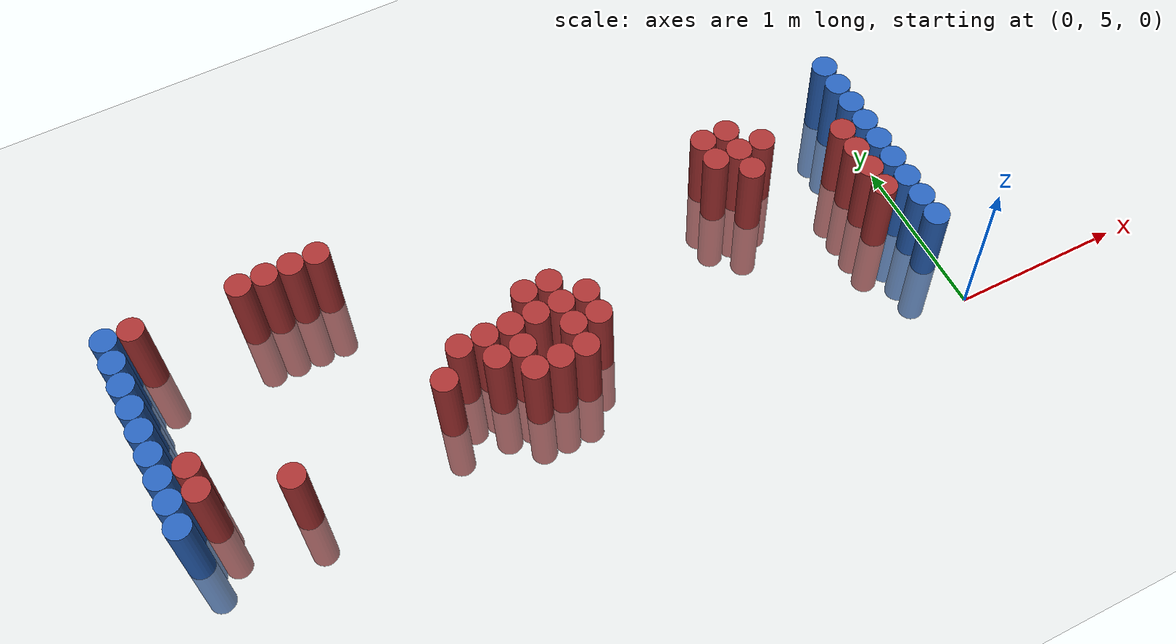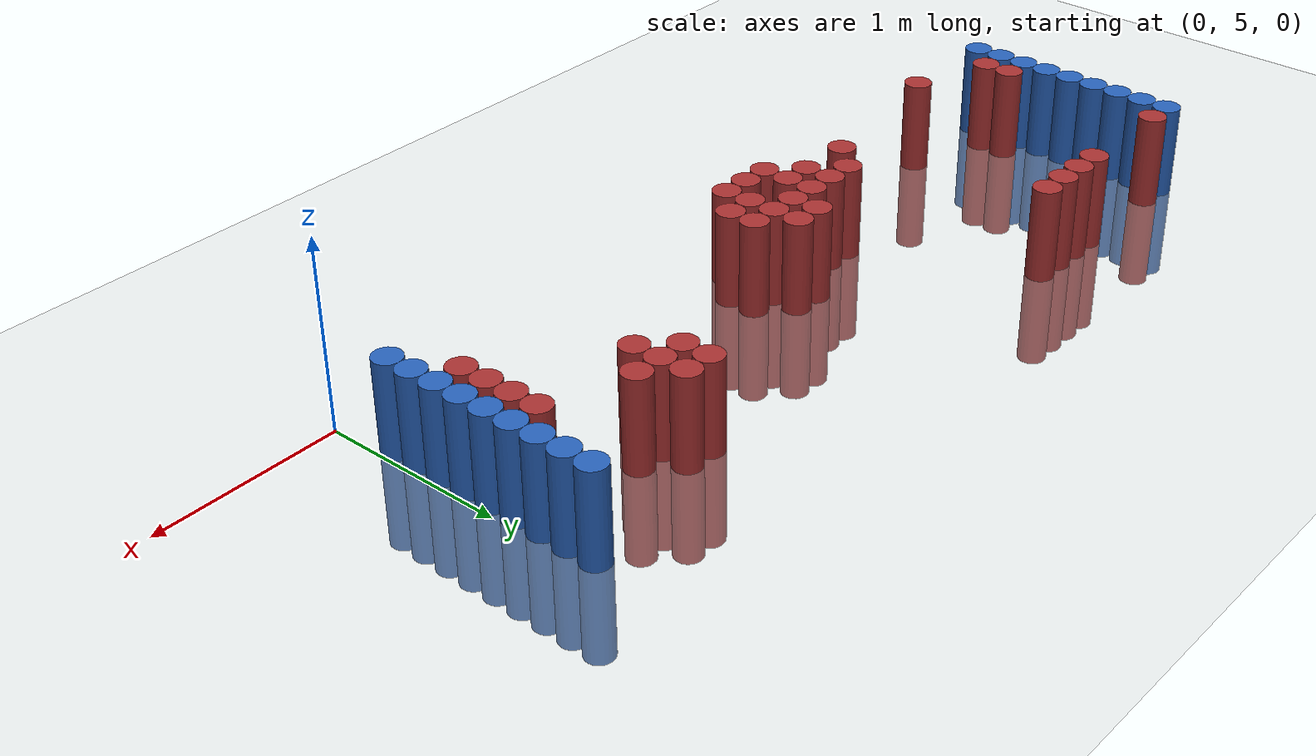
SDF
<sdf version="1.6">
 <world name="default">
  <model name="ground_plane">
   <static>1</static>
   <link name="link">
    <collision name="collision">
     <geometry><plane><normal>0 0 1</normal><size>100 100</size></plane></geometry>
     <surface><friction><ode><mu>100</mu><mu2>50</mu2></ode></friction></surface>
    </collision>
    <visual name="visual">
     <cast_shadows>0</cast_shadows>
     <geometry><plane><normal>0 0 1</normal><size>100 100</size></plane></geometry>
     <material>
      <script><uri>file://media/materials/scripts/gazebo.material</uri><name>Gazebo/Grey</name></script>
     </material>
    </visual>
   </link>
  </model>
  <model name="unit_cylinder_98">
   <static>1</static>
   <pose>-4.425000 5.475000 0.000000 0.000000 0.000000 0.000000</pose>
   <link name="link">
    <inertial>
     <mass>1</mass>
     <inertia><ixx>0.145833</ixx><ixy>0</ixy><ixz>0</ixz><iyy>0.145833</iyy><iyz>0</iyz><izz>0.125</izz></inertia>
    </inertial>
    <collision name="collision">
     <geometry><cylinder><radius>0.075000</radius><length>1</length></cylinder></geometry>
    </collision>
    <visual name="visual">
     <geometry><cylinder><radius>0.075000</radius><length>1</length></cylinder></geometry>
     <material>
      <ambient>0.152000 0.379000 0.720000 1</ambient>
      <diffuse>0.152000 0.379000 0.720000 1</diffuse>
     </material>
     <material>
      <script><name>Gazebo/Grey</name><uri>file://media/materials/scripts/gazebo.material</uri></script>
     </material>
    </visual>
   </link>
  </model>
  <model name="unit_cylinder_99">
   <static>1</static>
   <pose>-4.425000 5.625000 0.000000 0.000000 0.000000 0.000000</pose>
   <link name="link">
    <inertial>
     <mass>1</mass>
     <inertia><ixx>0.145833</ixx><ixy>0</ixy><ixz>0</ixz><iyy>0.145833</iyy><iyz>0</iyz><izz>0.125</izz></inertia>
    </inertial>
    <collision name="collision">
     <geometry><cylinder><radius>0.075000</radius><length>1</length></cylinder></geometry>
    </collision>
    <visual name="visual">
     <geometry><cylinder><radius>0.075000</radius><length>1</length></cylinder></geometry>
     <material>
      <ambient>0.152000 0.379000 0.720000 1</ambient>
      <diffuse>0.152000 0.379000 0.720000 1</diffuse>
     </material>
     <material>
      <script><name>Gazebo/Grey</name><uri>file://media/materials/scripts/gazebo.material</uri></script>
     </material>
    </visual>
   </link>
  </model>
  <model name="unit_cylinder_100">
   <static>1</static>
   <pose>-4.425000 5.775000 0.000000 0.000000 0.000000 0.000000</pose>
   <link name="link">
    <inertial>
     <mass>1</mass>
     <inertia><ixx>0.145833</ixx><ixy>0</ixy><ixz>0</ixz><iyy>0.145833</iyy><iyz>0</iyz><izz>0.125</izz></inertia>
    </inertial>
    <collision name="collision">
     <geometry><cylinder><radius>0.075000</radius><length>1</length></cylinder></geometry>
    </collision>
    <visual name="visual">
     <geometry><cylinder><radius>0.075000</radius><length>1</length></cylinder></geometry>
     <material>
      <ambient>0.152000 0.379000 0.720000 1</ambient>
      <diffuse>0.152000 0.379000 0.720000 1</diffuse>
     </material>
     <material>
      <script><name>Gazebo/Grey</name><uri>file://media/materials/scripts/gazebo.material</uri></script>
     </material>
    </visual>
   </link>
  </model>
  <model name="unit_cylinder_101">
   <static>1</static>
   <pose>-4.425000 5.925000 0.000000 0.000000 0.000000 0.000000</pose>
   <link name="link">
    <inertial>
     <mass>1</mass>
     <inertia><ixx>0.145833</ixx><ixy>0</ixy><ixz>0</ixz><iyy>0.145833</iyy><iyz>0</iyz><izz>0.125</izz></inertia>
    </inertial>
    <collision name="collision">
     <geometry><cylinder><radius>0.075000</radius><length>1</length></cylinder></geometry>
    </collision>
    <visual name="visual">
     <geometry><cylinder><radius>0.075000</radius><length>1</length></cylinder></geometry>
     <material>
      <ambient>0.152000 0.379000 0.720000 1</ambient>
      <diffuse>0.152000 0.379000 0.720000 1</diffuse>
     </material>
     <material>
      <script><name>Gazebo/Grey</name><uri>file://media/materials/scripts/gazebo.material</uri></script>
     </material>
    </visual>
   </link>
  </model>
  <model name="unit_cylinder_102">
   <static>1</static>
   <pose>-4.425000 6.075000 0.000000 0.000000 0.000000 0.000000</pose>
   <link name="link">
    <inertial>
     <mass>1</mass>
     <inertia><ixx>0.145833</ixx><ixy>0</ixy><ixz>0</ixz><iyy>0.145833</iyy><iyz>0</iyz><izz>0.125</izz></inertia>
    </inertial>
    <collision name="collision">
     <geometry><cylinder><radius>0.075000</radius><length>1</length></cylinder></geometry>
    </collision>
    <visual name="visual">
     <geometry><cylinder><radius>0.075000</radius><length>1</length></cylinder></geometry>
     <material>
      <ambient>0.152000 0.379000 0.720000 1</ambient>
      <diffuse>0.152000 0.379000 0.720000 1</diffuse>
     </material>
     <material>
      <script><name>Gazebo/Grey</name><uri>file://media/materials/scripts/gazebo.material</uri></script>
     </material>
    </visual>
   </link>
  </model>
  <model name="unit_cylinder_103">
   <static>1</static>
   <pose>-4.425000 6.225000 0.000000 0.000000 0.000000 0.000000</pose>
   <link name="link">
    <inertial>
     <mass>1</mass>
     <inertia><ixx>0.145833</ixx><ixy>0</ixy><ixz>0</ixz><iyy>0.145833</iyy><iyz>0</iyz><izz>0.125</izz></inertia>
    </inertial>
    <collision name="collision">
     <geometry><cylinder><radius>0.075000</radius><length>1</length></cylinder></geometry>
    </collision>
    <visual name="visual">
     <geometry><cylinder><radius>0.075000</radius><length>1</length></cylinder></geometry>
     <material>
      <ambient>0.152000 0.379000 0.720000 1</ambient>
      <diffuse>0.152000 0.379000 0.720000 1</diffuse>
     </material>
     <material>
      <script><name>Gazebo/Grey</name><uri>file://media/materials/scripts/gazebo.material</uri></script>
     </material>
    </visual>
   </link>
  </model>
  <model name="unit_cylinder_104">
   <static>1</static>
   <pose>-4.425000 6.375000 0.000000 0.000000 0.000000 0.000000</pose>
   <link name="link">
    <inertial>
     <mass>1</mass>
     <inertia><ixx>0.145833</ixx><ixy>0</ixy><ixz>0</ixz><iyy>0.145833</iyy><iyz>0</iyz><izz>0.125</izz></inertia>
    </inertial>
    <collision name="collision">
     <geometry><cylinder><radius>0.075000</radius><length>1</length></cylinder></geometry>
    </collision>
    <visual name="visual">
     <geometry><cylinder><radius>0.075000</radius><length>1</length></cylinder></geometry>
     <material>
      <ambient>0.152000 0.379000 0.720000 1</ambient>
      <diffuse>0.152000 0.379000 0.720000 1</diffuse>
     </material>
     <material>
      <script><name>Gazebo/Grey</name><uri>file://media/materials/scripts/gazebo.material</uri></script>
     </material>
    </visual>
   </link>
  </model>
  <model name="unit_cylinder_105">
   <static>1</static>
   <pose>-4.425000 6.525000 0.000000 0.000000 0.000000 0.000000</pose>
   <link name="link">
    <inertial>
     <mass>1</mass>
     <inertia><ixx>0.145833</ixx><ixy>0</ixy><ixz>0</ixz><iyy>0.145833</iyy><iyz>0</iyz><izz>0.125</izz></inertia>
    </inertial>
    <collision name="collision">
     <geometry><cylinder><radius>0.075000</radius><length>1</length></cylinder></geometry>
    </collision>
    <visual name="visual">
     <geometry><cylinder><radius>0.075000</radius><length>1</length></cylinder></geometry>
     <material>
      <ambient>0.152000 0.379000 0.720000 1</ambient>
      <diffuse>0.152000 0.379000 0.720000 1</diffuse>
     </material>
     <material>
      <script><name>Gazebo/Grey</name><uri>file://media/materials/scripts/gazebo.material</uri></script>
     </material>
    </visual>
   </link>
  </model>
  <model name="unit_cylinder_106">
   <static>1</static>
   <pose>-4.425000 6.675000 0.000000 0.000000 0.000000 0.000000</pose>
   <link name="link">
    <inertial>
     <mass>1</mass>
     <inertia><ixx>0.145833</ixx><ixy>0</ixy><ixz>0</ixz><iyy>0.145833</iyy><iyz>0</iyz><izz>0.125</izz></inertia>
    </inertial>
    <collision name="collision">
     <geometry><cylinder><radius>0.075000</radius><length>1</length></cylinder></geometry>
    </collision>
    <visual name="visual">
     <geometry><cylinder><radius>0.075000</radius><length>1</length></cylinder></geometry>
     <material>
      <ambient>0.152000 0.379000 0.720000 1</ambient>
      <diffuse>0.152000 0.379000 0.720000 1</diffuse>
     </material>
     <material>
      <script><name>Gazebo/Grey</name><uri>file://media/materials/scripts/gazebo.material</uri></script>
     </material>
    </visual>
   </link>
  </model>
  <model name="unit_cylinder_126">
   <static>1</static>
   <pose>-4.275000 5.625000 0.000000 0.000000 0.000000 0.000000</pose>
   <link name="link">
    <inertial>
     <mass>1</mass>
     <inertia><ixx>0.145833</ixx><ixy>0</ixy><ixz>0</ixz><iyy>0.145833</iyy><iyz>0</iyz><izz>0.125</izz></inertia>
    </inertial>
    <collision name="collision">
     <geometry><cylinder><radius>0.075000</radius><length>1</length></cylinder></geometry>
    </collision>
    <visual name="visual">
     <geometry><cylinder><radius>0.075000</radius><length>1</length></cylinder></geometry>
     <material>
      <ambient>0.648000 0.192000 0.192000 1</ambient>
      <diffuse>0.648000 0.192000 0.192000 1</diffuse>
     </material>
     <material>
      <script><name>Gazebo/Grey</name><uri>file://media/materials/scripts/gazebo.material</uri></script>
     </material>
    </visual>
   </link>
  </model>
  <model name="unit_cylinder_127">
   <static>1</static>
   <pose>-4.275000 5.775000 0.000000 0.000000 0.000000 0.000000</pose>
   <link name="link">
    <inertial>
     <mass>1</mass>
     <inertia><ixx>0.145833</ixx><ixy>0</ixy><ixz>0</ixz><iyy>0.145833</iyy><iyz>0</iyz><izz>0.125</izz></inertia>
    </inertial>
    <collision name="collision">
     <geometry><cylinder><radius>0.075000</radius><length>1</length></cylinder></geometry>
    </collision>
    <visual name="visual">
     <geometry><cylinder><radius>0.075000</radius><length>1</length></cylinder></geometry>
     <material>
      <ambient>0.648000 0.192000 0.192000 1</ambient>
      <diffuse>0.648000 0.192000 0.192000 1</diffuse>
     </material>
     <material>
      <script><name>Gazebo/Grey</name><uri>file://media/materials/scripts/gazebo.material</uri></script>
     </material>
    </visual>
   </link>
  </model>
  <model name="unit_cylinder_128">
   <static>1</static>
   <pose>-4.275000 6.675000 0.000000 0.000000 0.000000 0.000000</pose>
   <link name="link">
    <inertial>
     <mass>1</mass>
     <inertia><ixx>0.145833</ixx><ixy>0</ixy><ixz>0</ixz><iyy>0.145833</iyy><iyz>0</iyz><izz>0.125</izz></inertia>
    </inertial>
    <collision name="collision">
     <geometry><cylinder><radius>0.075000</radius><length>1</length></cylinder></geometry>
    </collision>
    <visual name="visual">
     <geometry><cylinder><radius>0.075000</radius><length>1</length></cylinder></geometry>
     <material>
      <ambient>0.648000 0.192000 0.192000 1</ambient>
      <diffuse>0.648000 0.192000 0.192000 1</diffuse>
     </material>
     <material>
      <script><name>Gazebo/Grey</name><uri>file://media/materials/scripts/gazebo.material</uri></script>
     </material>
    </visual>
   </link>
  </model>
  <model name="unit_cylinder_158">
   <static>1</static>
   <pose>-3.825000 5.475000 0.000000 0.000000 0.000000 0.000000</pose>
   <link name="link">
    <inertial>
     <mass>1</mass>
     <inertia><ixx>0.145833</ixx><ixy>0</ixy><ixz>0</ixz><iyy>0.145833</iyy><iyz>0</iyz><izz>0.125</izz></inertia>
    </inertial>
    <collision name="collision">
     <geometry><cylinder><radius>0.075000</radius><length>1</length></cylinder></geometry>
    </collision>
    <visual name="visual">
     <geometry><cylinder><radius>0.075000</radius><length>1</length></cylinder></geometry>
     <material>
      <ambient>0.648000 0.192000 0.192000 1</ambient>
      <diffuse>0.648000 0.192000 0.192000 1</diffuse>
     </material>
     <material>
      <script><name>Gazebo/Grey</name><uri>file://media/materials/scripts/gazebo.material</uri></script>
     </material>
    </visual>
   </link>
  </model>
  <model name="unit_cylinder_164">
   <static>1</static>
   <pose>-3.675000 6.675000 0.000000 0.000000 0.000000 0.000000</pose>
   <link name="link">
    <inertial>
     <mass>1</mass>
     <inertia><ixx>0.145833</ixx><ixy>0</ixy><ixz>0</ixz><iyy>0.145833</iyy><iyz>0</iyz><izz>0.125</izz></inertia>
    </inertial>
    <collision name="collision">
     <geometry><cylinder><radius>0.075000</radius><length>1</length></cylinder></geometry>
    </collision>
    <visual name="visual">
     <geometry><cylinder><radius>0.075000</radius><length>1</length></cylinder></geometry>
     <material>
      <ambient>0.648000 0.192000 0.192000 1</ambient>
      <diffuse>0.648000 0.192000 0.192000 1</diffuse>
     </material>
     <material>
      <script><name>Gazebo/Grey</name><uri>file://media/materials/scripts/gazebo.material</uri></script>
     </material>
    </visual>
   </link>
  </model>
  <model name="unit_cylinder_167">
   <static>1</static>
   <pose>-3.525000 6.675000 0.000000 0.000000 0.000000 0.000000</pose>
   <link name="link">
    <inertial>
     <mass>1</mass>
     <inertia><ixx>0.145833</ixx><ixy>0</ixy><ixz>0</ixz><iyy>0.145833</iyy><iyz>0</iyz><izz>0.125</izz></inertia>
    </inertial>
    <collision name="collision">
     <geometry><cylinder><radius>0.075000</radius><length>1</length></cylinder></geometry>
    </collision>
    <visual name="visual">
     <geometry><cylinder><radius>0.075000</radius><length>1</length></cylinder></geometry>
     <material>
      <ambient>0.648000 0.192000 0.192000 1</ambient>
      <diffuse>0.648000 0.192000 0.192000 1</diffuse>
     </material>
     <material>
      <script><name>Gazebo/Grey</name><uri>file://media/materials/scripts/gazebo.material</uri></script>
     </material>
    </visual>
   </link>
  </model>
  <model name="unit_cylinder_173">
   <static>1</static>
   <pose>-3.375000 6.675000 0.000000 0.000000 0.000000 0.000000</pose>
   <link name="link">
    <inertial>
     <mass>1</mass>
     <inertia><ixx>0.145833</ixx><ixy>0</ixy><ixz>0</ixz><iyy>0.145833</iyy><iyz>0</iyz><izz>0.125</izz></inertia>
    </inertial>
    <collision name="collision">
     <geometry><cylinder><radius>0.075000</radius><length>1</length></cylinder></geometry>
    </collision>
    <visual name="visual">
     <geometry><cylinder><radius>0.075000</radius><length>1</length></cylinder></geometry>
     <material>
      <ambient>0.648000 0.192000 0.192000 1</ambient>
      <diffuse>0.648000 0.192000 0.192000 1</diffuse>
     </material>
     <material>
      <script><name>Gazebo/Grey</name><uri>file://media/materials/scripts/gazebo.material</uri></script>
     </material>
    </visual>
   </link>
  </model>
  <model name="unit_cylinder_181">
   <static>1</static>
   <pose>-3.225000 6.675000 0.000000 0.000000 0.000000 0.000000</pose>
   <link name="link">
    <inertial>
     <mass>1</mass>
     <inertia><ixx>0.145833</ixx><ixy>0</ixy><ixz>0</ixz><iyy>0.145833</iyy><iyz>0</iyz><izz>0.125</izz></inertia>
    </inertial>
    <collision name="collision">
     <geometry><cylinder><radius>0.075000</radius><length>1</length></cylinder></geometry>
    </collision>
    <visual name="visual">
     <geometry><cylinder><radius>0.075000</radius><length>1</length></cylinder></geometry>
     <material>
      <ambient>0.648000 0.192000 0.192000 1</ambient>
      <diffuse>0.648000 0.192000 0.192000 1</diffuse>
     </material>
     <material>
      <script><name>Gazebo/Grey</name><uri>file://media/materials/scripts/gazebo.material</uri></script>
     </material>
    </visual>
   </link>
  </model>
  <model name="unit_cylinder_193">
   <static>1</static>
   <pose>-2.925000 5.625000 0.000000 0.000000 0.000000 0.000000</pose>
   <link name="link">
    <inertial>
     <mass>1</mass>
     <inertia><ixx>0.145833</ixx><ixy>0</ixy><ixz>0</ixz><iyy>0.145833</iyy><iyz>0</iyz><izz>0.125</izz></inertia>
    </inertial>
    <collision name="collision">
     <geometry><cylinder><radius>0.075000</radius><length>1</length></cylinder></geometry>
    </collision>
    <visual name="visual">
     <geometry><cylinder><radius>0.075000</radius><length>1</length></cylinder></geometry>
     <material>
      <ambient>0.648000 0.192000 0.192000 1</ambient>
      <diffuse>0.648000 0.192000 0.192000 1</diffuse>
     </material>
     <material>
      <script><name>Gazebo/Grey</name><uri>file://media/materials/scripts/gazebo.material</uri></script>
     </material>
    </visual>
   </link>
  </model>
  <model name="unit_cylinder_200">
   <static>1</static>
   <pose>-2.775000 5.775000 0.000000 0.000000 0.000000 0.000000</pose>
   <link name="link">
    <inertial>
     <mass>1</mass>
     <inertia><ixx>0.145833</ixx><ixy>0</ixy><ixz>0</ixz><iyy>0.145833</iyy><iyz>0</iyz><izz>0.125</izz></inertia>
    </inertial>
    <collision name="collision">
     <geometry><cylinder><radius>0.075000</radius><length>1</length></cylinder></geometry>
    </collision>
    <visual name="visual">
     <geometry><cylinder><radius>0.075000</radius><length>1</length></cylinder></geometry>
     <material>
      <ambient>0.648000 0.192000 0.192000 1</ambient>
      <diffuse>0.648000 0.192000 0.192000 1</diffuse>
     </material>
     <material>
      <script><name>Gazebo/Grey</name><uri>file://media/materials/scripts/gazebo.material</uri></script>
     </material>
    </visual>
   </link>
  </model>
  <model name="unit_cylinder_208">
   <static>1</static>
   <pose>-2.625000 5.625000 0.000000 0.000000 0.000000 0.000000</pose>
   <link name="link">
    <inertial>
     <mass>1</mass>
     <inertia><ixx>0.145833</ixx><ixy>0</ixy><ixz>0</ixz><iyy>0.145833</iyy><iyz>0</iyz><izz>0.125</izz></inertia>
    </inertial>
    <collision name="collision">
     <geometry><cylinder><radius>0.075000</radius><length>1</length></cylinder></geometry>
    </collision>
    <visual name="visual">
     <geometry><cylinder><radius>0.075000</radius><length>1</length></cylinder></geometry>
     <material>
      <ambient>0.648000 0.192000 0.192000 1</ambient>
      <diffuse>0.648000 0.192000 0.192000 1</diffuse>
     </material>
     <material>
      <script><name>Gazebo/Grey</name><uri>file://media/materials/scripts/gazebo.material</uri></script>
     </material>
    </visual>
   </link>
  </model>
  <model name="unit_cylinder_209">
   <static>1</static>
   <pose>-2.625000 5.775000 0.000000 0.000000 0.000000 0.000000</pose>
   <link name="link">
    <inertial>
     <mass>1</mass>
     <inertia><ixx>0.145833</ixx><ixy>0</ixy><ixz>0</ixz><iyy>0.145833</iyy><iyz>0</iyz><izz>0.125</izz></inertia>
    </inertial>
    <collision name="collision">
     <geometry><cylinder><radius>0.075000</radius><length>1</length></cylinder></geometry>
    </collision>
    <visual name="visual">
     <geometry><cylinder><radius>0.075000</radius><length>1</length></cylinder></geometry>
     <material>
      <ambient>0.648000 0.192000 0.192000 1</ambient>
      <diffuse>0.648000 0.192000 0.192000 1</diffuse>
     </material>
     <material>
      <script><name>Gazebo/Grey</name><uri>file://media/materials/scripts/gazebo.material</uri></script>
     </material>
    </visual>
   </link>
  </model>
  <model name="unit_cylinder_218">
   <static>1</static>
   <pose>-2.475000 5.475000 0.000000 0.000000 0.000000 0.000000</pose>
   <link name="link">
    <inertial>
     <mass>1</mass>
     <inertia><ixx>0.145833</ixx><ixy>0</ixy><ixz>0</ixz><iyy>0.145833</iyy><iyz>0</iyz><izz>0.125</izz></inertia>
    </inertial>
    <collision name="collision">
     <geometry><cylinder><radius>0.075000</radius><length>1</length></cylinder></geometry>
    </collision>
    <visual name="visual">
     <geometry><cylinder><radius>0.075000</radius><length>1</length></cylinder></geometry>
     <material>
      <ambient>0.648000 0.192000 0.192000 1</ambient>
      <diffuse>0.648000 0.192000 0.192000 1</diffuse>
     </material>
     <material>
      <script><name>Gazebo/Grey</name><uri>file://media/materials/scripts/gazebo.material</uri></script>
     </material>
    </visual>
   </link>
  </model>
  <model name="unit_cylinder_219">
   <static>1</static>
   <pose>-2.475000 5.625000 0.000000 0.000000 0.000000 0.000000</pose>
   <link name="link">
    <inertial>
     <mass>1</mass>
     <inertia><ixx>0.145833</ixx><ixy>0</ixy><ixz>0</ixz><iyy>0.145833</iyy><iyz>0</iyz><izz>0.125</izz></inertia>
    </inertial>
    <collision name="collision">
     <geometry><cylinder><radius>0.075000</radius><length>1</length></cylinder></geometry>
    </collision>
    <visual name="visual">
     <geometry><cylinder><radius>0.075000</radius><length>1</length></cylinder></geometry>
     <material>
      <ambient>0.648000 0.192000 0.192000 1</ambient>
      <diffuse>0.648000 0.192000 0.192000 1</diffuse>
     </material>
     <material>
      <script><name>Gazebo/Grey</name><uri>file://media/materials/scripts/gazebo.material</uri></script>
     </material>
    </visual>
   </link>
  </model>
  <model name="unit_cylinder_220">
   <static>1</static>
   <pose>-2.475000 5.775000 0.000000 0.000000 0.000000 0.000000</pose>
   <link name="link">
    <inertial>
     <mass>1</mass>
     <inertia><ixx>0.145833</ixx><ixy>0</ixy><ixz>0</ixz><iyy>0.145833</iyy><iyz>0</iyz><izz>0.125</izz></inertia>
    </inertial>
    <collision name="collision">
     <geometry><cylinder><radius>0.075000</radius><length>1</length></cylinder></geometry>
    </collision>
    <visual name="visual">
     <geometry><cylinder><radius>0.075000</radius><length>1</length></cylinder></geometry>
     <material>
      <ambient>0.648000 0.192000 0.192000 1</ambient>
      <diffuse>0.648000 0.192000 0.192000 1</diffuse>
     </material>
     <material>
      <script><name>Gazebo/Grey</name><uri>file://media/materials/scripts/gazebo.material</uri></script>
     </material>
    </visual>
   </link>
  </model>
  <model name="unit_cylinder_226">
   <static>1</static>
   <pose>-2.325000 5.475000 0.000000 0.000000 0.000000 0.000000</pose>
   <link name="link">
    <inertial>
     <mass>1</mass>
     <inertia><ixx>0.145833</ixx><ixy>0</ixy><ixz>0</ixz><iyy>0.145833</iyy><iyz>0</iyz><izz>0.125</izz></inertia>
    </inertial>
    <collision name="collision">
     <geometry><cylinder><radius>0.075000</radius><length>1</length></cylinder></geometry>
    </collision>
    <visual name="visual">
     <geometry><cylinder><radius>0.075000</radius><length>1</length></cylinder></geometry>
     <material>
      <ambient>0.648000 0.192000 0.192000 1</ambient>
      <diffuse>0.648000 0.192000 0.192000 1</diffuse>
     </material>
     <material>
      <script><name>Gazebo/Grey</name><uri>file://media/materials/scripts/gazebo.material</uri></script>
     </material>
    </visual>
   </link>
  </model>
  <model name="unit_cylinder_227">
   <static>1</static>
   <pose>-2.325000 5.775000 0.000000 0.000000 0.000000 0.000000</pose>
   <link name="link">
    <inertial>
     <mass>1</mass>
     <inertia><ixx>0.145833</ixx><ixy>0</ixy><ixz>0</ixz><iyy>0.145833</iyy><iyz>0</iyz><izz>0.125</izz></inertia>
    </inertial>
    <collision name="collision">
     <geometry><cylinder><radius>0.075000</radius><length>1</length></cylinder></geometry>
    </collision>
    <visual name="visual">
     <geometry><cylinder><radius>0.075000</radius><length>1</length></cylinder></geometry>
     <material>
      <ambient>0.648000 0.192000 0.192000 1</ambient>
      <diffuse>0.648000 0.192000 0.192000 1</diffuse>
     </material>
     <material>
      <script><name>Gazebo/Grey</name><uri>file://media/materials/scripts/gazebo.material</uri></script>
     </material>
    </visual>
   </link>
  </model>
  <model name="unit_cylinder_228">
   <static>1</static>
   <pose>-2.325000 5.925000 0.000000 0.000000 0.000000 0.000000</pose>
   <link name="link">
    <inertial>
     <mass>1</mass>
     <inertia><ixx>0.145833</ixx><ixy>0</ixy><ixz>0</ixz><iyy>0.145833</iyy><iyz>0</iyz><izz>0.125</izz></inertia>
    </inertial>
    <collision name="collision">
     <geometry><cylinder><radius>0.075000</radius><length>1</length></cylinder></geometry>
    </collision>
    <visual name="visual">
     <geometry><cylinder><radius>0.075000</radius><length>1</length></cylinder></geometry>
     <material>
      <ambient>0.648000 0.192000 0.192000 1</ambient>
      <diffuse>0.648000 0.192000 0.192000 1</diffuse>
     </material>
     <material>
      <script><name>Gazebo/Grey</name><uri>file://media/materials/scripts/gazebo.material</uri></script>
     </material>
    </visual>
   </link>
  </model>
  <model name="unit_cylinder_232">
   <static>1</static>
   <pose>-2.175000 5.475000 0.000000 0.000000 0.000000 0.000000</pose>
   <link name="link">
    <inertial>
     <mass>1</mass>
     <inertia><ixx>0.145833</ixx><ixy>0</ixy><ixz>0</ixz><iyy>0.145833</iyy><iyz>0</iyz><izz>0.125</izz></inertia>
    </inertial>
    <collision name="collision">
     <geometry><cylinder><radius>0.075000</radius><length>1</length></cylinder></geometry>
    </collision>
    <visual name="visual">
     <geometry><cylinder><radius>0.075000</radius><length>1</length></cylinder></geometry>
     <material>
      <ambient>0.648000 0.192000 0.192000 1</ambient>
      <diffuse>0.648000 0.192000 0.192000 1</diffuse>
     </material>
     <material>
      <script><name>Gazebo/Grey</name><uri>file://media/materials/scripts/gazebo.material</uri></script>
     </material>
    </visual>
   </link>
  </model>
  <model name="unit_cylinder_233">
   <static>1</static>
   <pose>-2.175000 5.625000 0.000000 0.000000 0.000000 0.000000</pose>
   <link name="link">
    <inertial>
     <mass>1</mass>
     <inertia><ixx>0.145833</ixx><ixy>0</ixy><ixz>0</ixz><iyy>0.145833</iyy><iyz>0</iyz><izz>0.125</izz></inertia>
    </inertial>
    <collision name="collision">
     <geometry><cylinder><radius>0.075000</radius><length>1</length></cylinder></geometry>
    </collision>
    <visual name="visual">
     <geometry><cylinder><radius>0.075000</radius><length>1</length></cylinder></geometry>
     <material>
      <ambient>0.648000 0.192000 0.192000 1</ambient>
      <diffuse>0.648000 0.192000 0.192000 1</diffuse>
     </material>
     <material>
      <script><name>Gazebo/Grey</name><uri>file://media/materials/scripts/gazebo.material</uri></script>
     </material>
    </visual>
   </link>
  </model>
  <model name="unit_cylinder_234">
   <static>1</static>
   <pose>-2.175000 5.775000 0.000000 0.000000 0.000000 0.000000</pose>
   <link name="link">
    <inertial>
     <mass>1</mass>
     <inertia><ixx>0.145833</ixx><ixy>0</ixy><ixz>0</ixz><iyy>0.145833</iyy><iyz>0</iyz><izz>0.125</izz></inertia>
    </inertial>
    <collision name="collision">
     <geometry><cylinder><radius>0.075000</radius><length>1</length></cylinder></geometry>
    </collision>
    <visual name="visual">
     <geometry><cylinder><radius>0.075000</radius><length>1</length></cylinder></geometry>
     <material>
      <ambient>0.648000 0.192000 0.192000 1</ambient>
      <diffuse>0.648000 0.192000 0.192000 1</diffuse>
     </material>
     <material>
      <script><name>Gazebo/Grey</name><uri>file://media/materials/scripts/gazebo.material</uri></script>
     </material>
    </visual>
   </link>
  </model>
  <model name="unit_cylinder_235">
   <static>1</static>
   <pose>-2.175000 5.925000 0.000000 0.000000 0.000000 0.000000</pose>
   <link name="link">
    <inertial>
     <mass>1</mass>
     <inertia><ixx>0.145833</ixx><ixy>0</ixy><ixz>0</ixz><iyy>0.145833</iyy><iyz>0</iyz><izz>0.125</izz></inertia>
    </inertial>
    <collision name="collision">
     <geometry><cylinder><radius>0.075000</radius><length>1</length></cylinder></geometry>
    </collision>
    <visual name="visual">
     <geometry><cylinder><radius>0.075000</radius><length>1</length></cylinder></geometry>
     <material>
      <ambient>0.648000 0.192000 0.192000 1</ambient>
      <diffuse>0.648000 0.192000 0.192000 1</diffuse>
     </material>
     <material>
      <script><name>Gazebo/Grey</name><uri>file://media/materials/scripts/gazebo.material</uri></script>
     </material>
    </visual>
   </link>
  </model>
  <model name="unit_cylinder_239">
   <static>1</static>
   <pose>-2.025000 5.625000 0.000000 0.000000 0.000000 0.000000</pose>
   <link name="link">
    <inertial>
     <mass>1</mass>
     <inertia><ixx>0.145833</ixx><ixy>0</ixy><ixz>0</ixz><iyy>0.145833</iyy><iyz>0</iyz><izz>0.125</izz></inertia>
    </inertial>
    <collision name="collision">
     <geometry><cylinder><radius>0.075000</radius><length>1</length></cylinder></geometry>
    </collision>
    <visual name="visual">
     <geometry><cylinder><radius>0.075000</radius><length>1</length></cylinder></geometry>
     <material>
      <ambient>0.648000 0.192000 0.192000 1</ambient>
      <diffuse>0.648000 0.192000 0.192000 1</diffuse>
     </material>
     <material>
      <script><name>Gazebo/Grey</name><uri>file://media/materials/scripts/gazebo.material</uri></script>
     </material>
    </visual>
   </link>
  </model>
  <model name="unit_cylinder_240">
   <static>1</static>
   <pose>-2.025000 5.775000 0.000000 0.000000 0.000000 0.000000</pose>
   <link name="link">
    <inertial>
     <mass>1</mass>
     <inertia><ixx>0.145833</ixx><ixy>0</ixy><ixz>0</ixz><iyy>0.145833</iyy><iyz>0</iyz><izz>0.125</izz></inertia>
    </inertial>
    <collision name="collision">
     <geometry><cylinder><radius>0.075000</radius><length>1</length></cylinder></geometry>
    </collision>
    <visual name="visual">
     <geometry><cylinder><radius>0.075000</radius><length>1</length></cylinder></geometry>
     <material>
      <ambient>0.648000 0.192000 0.192000 1</ambient>
      <diffuse>0.648000 0.192000 0.192000 1</diffuse>
     </material>
     <material>
      <script><name>Gazebo/Grey</name><uri>file://media/materials/scripts/gazebo.material</uri></script>
     </material>
    </visual>
   </link>
  </model>
  <model name="unit_cylinder_262">
   <static>1</static>
   <pose>-0.975000 6.225000 0.000000 0.000000 0.000000 0.000000</pose>
   <link name="link">
    <inertial>
     <mass>1</mass>
     <inertia><ixx>0.145833</ixx><ixy>0</ixy><ixz>0</ixz><iyy>0.145833</iyy><iyz>0</iyz><izz>0.125</izz></inertia>
    </inertial>
    <collision name="collision">
     <geometry><cylinder><radius>0.075000</radius><length>1</length></cylinder></geometry>
    </collision>
    <visual name="visual">
     <geometry><cylinder><radius>0.075000</radius><length>1</length></cylinder></geometry>
     <material>
      <ambient>0.648000 0.192000 0.192000 1</ambient>
      <diffuse>0.648000 0.192000 0.192000 1</diffuse>
     </material>
     <material>
      <script><name>Gazebo/Grey</name><uri>file://media/materials/scripts/gazebo.material</uri></script>
     </material>
    </visual>
   </link>
  </model>
  <model name="unit_cylinder_263">
   <static>1</static>
   <pose>-0.975000 6.375000 0.000000 0.000000 0.000000 0.000000</pose>
   <link name="link">
    <inertial>
     <mass>1</mass>
     <inertia><ixx>0.145833</ixx><ixy>0</ixy><ixz>0</ixz><iyy>0.145833</iyy><iyz>0</iyz><izz>0.125</izz></inertia>
    </inertial>
    <collision name="collision">
     <geometry><cylinder><radius>0.075000</radius><length>1</length></cylinder></geometry>
    </collision>
    <visual name="visual">
     <geometry><cylinder><radius>0.075000</radius><length>1</length></cylinder></geometry>
     <material>
      <ambient>0.648000 0.192000 0.192000 1</ambient>
      <diffuse>0.648000 0.192000 0.192000 1</diffuse>
     </material>
     <material>
      <script><name>Gazebo/Grey</name><uri>file://media/materials/scripts/gazebo.material</uri></script>
     </material>
    </visual>
   </link>
  </model>
  <model name="unit_cylinder_264">
   <static>1</static>
   <pose>-0.825000 6.075000 0.000000 0.000000 0.000000 0.000000</pose>
   <link name="link">
    <inertial>
     <mass>1</mass>
     <inertia><ixx>0.145833</ixx><ixy>0</ixy><ixz>0</ixz><iyy>0.145833</iyy><iyz>0</iyz><izz>0.125</izz></inertia>
    </inertial>
    <collision name="collision">
     <geometry><cylinder><radius>0.075000</radius><length>1</length></cylinder></geometry>
    </collision>
    <visual name="visual">
     <geometry><cylinder><radius>0.075000</radius><length>1</length></cylinder></geometry>
     <material>
      <ambient>0.648000 0.192000 0.192000 1</ambient>
      <diffuse>0.648000 0.192000 0.192000 1</diffuse>
     </material>
     <material>
      <script><name>Gazebo/Grey</name><uri>file://media/materials/scripts/gazebo.material</uri></script>
     </material>
    </visual>
   </link>
  </model>
  <model name="unit_cylinder_265">
   <static>1</static>
   <pose>-0.825000 6.225000 0.000000 0.000000 0.000000 0.000000</pose>
   <link name="link">
    <inertial>
     <mass>1</mass>
     <inertia><ixx>0.145833</ixx><ixy>0</ixy><ixz>0</ixz><iyy>0.145833</iyy><iyz>0</iyz><izz>0.125</izz></inertia>
    </inertial>
    <collision name="collision">
     <geometry><cylinder><radius>0.075000</radius><length>1</length></cylinder></geometry>
    </collision>
    <visual name="visual">
     <geometry><cylinder><radius>0.075000</radius><length>1</length></cylinder></geometry>
     <material>
      <ambient>0.648000 0.192000 0.192000 1</ambient>
      <diffuse>0.648000 0.192000 0.192000 1</diffuse>
     </material>
     <material>
      <script><name>Gazebo/Grey</name><uri>file://media/materials/scripts/gazebo.material</uri></script>
     </material>
    </visual>
   </link>
  </model>
  <model name="unit_cylinder_266">
   <static>1</static>
   <pose>-0.825000 6.375000 0.000000 0.000000 0.000000 0.000000</pose>
   <link name="link">
    <inertial>
     <mass>1</mass>
     <inertia><ixx>0.145833</ixx><ixy>0</ixy><ixz>0</ixz><iyy>0.145833</iyy><iyz>0</iyz><izz>0.125</izz></inertia>
    </inertial>
    <collision name="collision">
     <geometry><cylinder><radius>0.075000</radius><length>1</length></cylinder></geometry>
    </collision>
    <visual name="visual">
     <geometry><cylinder><radius>0.075000</radius><length>1</length></cylinder></geometry>
     <material>
      <ambient>0.648000 0.192000 0.192000 1</ambient>
      <diffuse>0.648000 0.192000 0.192000 1</diffuse>
     </material>
     <material>
      <script><name>Gazebo/Grey</name><uri>file://media/materials/scripts/gazebo.material</uri></script>
     </material>
    </visual>
   </link>
  </model>
  <model name="unit_cylinder_267">
   <static>1</static>
   <pose>-0.675000 6.225000 0.000000 0.000000 0.000000 0.000000</pose>
   <link name="link">
    <inertial>
     <mass>1</mass>
     <inertia><ixx>0.145833</ixx><ixy>0</ixy><ixz>0</ixz><iyy>0.145833</iyy><iyz>0</iyz><izz>0.125</izz></inertia>
    </inertial>
    <collision name="collision">
     <geometry><cylinder><radius>0.075000</radius><length>1</length></cylinder></geometry>
    </collision>
    <visual name="visual">
     <geometry><cylinder><radius>0.075000</radius><length>1</length></cylinder></geometry>
     <material>
      <ambient>0.648000 0.192000 0.192000 1</ambient>
      <diffuse>0.648000 0.192000 0.192000 1</diffuse>
     </material>
     <material>
      <script><name>Gazebo/Grey</name><uri>file://media/materials/scripts/gazebo.material</uri></script>
     </material>
    </visual>
   </link>
  </model>
  <model name="unit_cylinder_268">
   <static>1</static>
   <pose>-0.225000 5.625000 0.000000 0.000000 0.000000 0.000000</pose>
   <link name="link">
    <inertial>
     <mass>1</mass>
     <inertia><ixx>0.145833</ixx><ixy>0</ixy><ixz>0</ixz><iyy>0.145833</iyy><iyz>0</iyz><izz>0.125</izz></inertia>
    </inertial>
    <collision name="collision">
     <geometry><cylinder><radius>0.075000</radius><length>1</length></cylinder></geometry>
    </collision>
    <visual name="visual">
     <geometry><cylinder><radius>0.075000</radius><length>1</length></cylinder></geometry>
     <material>
      <ambient>0.648000 0.192000 0.192000 1</ambient>
      <diffuse>0.648000 0.192000 0.192000 1</diffuse>
     </material>
     <material>
      <script><name>Gazebo/Grey</name><uri>file://media/materials/scripts/gazebo.material</uri></script>
     </material>
    </visual>
   </link>
  </model>
  <model name="unit_cylinder_269">
   <static>1</static>
   <pose>-0.225000 5.775000 0.000000 0.000000 0.000000 0.000000</pose>
   <link name="link">
    <inertial>
     <mass>1</mass>
     <inertia><ixx>0.145833</ixx><ixy>0</ixy><ixz>0</ixz><iyy>0.145833</iyy><iyz>0</iyz><izz>0.125</izz></inertia>
    </inertial>
    <collision name="collision">
     <geometry><cylinder><radius>0.075000</radius><length>1</length></cylinder></geometry>
    </collision>
    <visual name="visual">
     <geometry><cylinder><radius>0.075000</radius><length>1</length></cylinder></geometry>
     <material>
      <ambient>0.648000 0.192000 0.192000 1</ambient>
      <diffuse>0.648000 0.192000 0.192000 1</diffuse>
     </material>
     <material>
      <script><name>Gazebo/Grey</name><uri>file://media/materials/scripts/gazebo.material</uri></script>
     </material>
    </visual>
   </link>
  </model>
  <model name="unit_cylinder_270">
   <static>1</static>
   <pose>-0.225000 5.925000 0.000000 0.000000 0.000000 0.000000</pose>
   <link name="link">
    <inertial>
     <mass>1</mass>
     <inertia><ixx>0.145833</ixx><ixy>0</ixy><ixz>0</ixz><iyy>0.145833</iyy><iyz>0</iyz><izz>0.125</izz></inertia>
    </inertial>
    <collision name="collision">
     <geometry><cylinder><radius>0.075000</radius><length>1</length></cylinder></geometry>
    </collision>
    <visual name="visual">
     <geometry><cylinder><radius>0.075000</radius><length>1</length></cylinder></geometry>
     <material>
      <ambient>0.648000 0.192000 0.192000 1</ambient>
      <diffuse>0.648000 0.192000 0.192000 1</diffuse>
     </material>
     <material>
      <script><name>Gazebo/Grey</name><uri>file://media/materials/scripts/gazebo.material</uri></script>
     </material>
    </visual>
   </link>
  </model>
  <model name="unit_cylinder_271">
   <static>1</static>
   <pose>-0.225000 6.075000 0.000000 0.000000 0.000000 0.000000</pose>
   <link name="link">
    <inertial>
     <mass>1</mass>
     <inertia><ixx>0.145833</ixx><ixy>0</ixy><ixz>0</ixz><iyy>0.145833</iyy><iyz>0</iyz><izz>0.125</izz></inertia>
    </inertial>
    <collision name="collision">
     <geometry><cylinder><radius>0.075000</radius><length>1</length></cylinder></geometry>
    </collision>
    <visual name="visual">
     <geometry><cylinder><radius>0.075000</radius><length>1</length></cylinder></geometry>
     <material>
      <ambient>0.648000 0.192000 0.192000 1</ambient>
      <diffuse>0.648000 0.192000 0.192000 1</diffuse>
     </material>
     <material>
      <script><name>Gazebo/Grey</name><uri>file://media/materials/scripts/gazebo.material</uri></script>
     </material>
    </visual>
   </link>
  </model>
  <model name="unit_cylinder_284">
   <static>1</static>
   <pose>-0.075000 5.325000 0.000000 0.000000 0.000000 0.000000</pose>
   <link name="link">
    <inertial>
     <mass>1</mass>
     <inertia><ixx>0.145833</ixx><ixy>0</ixy><ixz>0</ixz><iyy>0.145833</iyy><iyz>0</iyz><izz>0.125</izz></inertia>
    </inertial>
    <collision name="collision">
     <geometry><cylinder><radius>0.075000</radius><length>1</length></cylinder></geometry>
    </collision>
    <visual name="visual">
     <geometry><cylinder><radius>0.075000</radius><length>1</length></cylinder></geometry>
     <material>
      <ambient>0.152000 0.379000 0.720000 1</ambient>
      <diffuse>0.152000 0.379000 0.720000 1</diffuse>
     </material>
     <material>
      <script><name>Gazebo/Grey</name><uri>file://media/materials/scripts/gazebo.material</uri></script>
     </material>
    </visual>
   </link>
  </model>
  <model name="unit_cylinder_285">
   <static>1</static>
   <pose>-0.075000 5.475000 0.000000 0.000000 0.000000 0.000000</pose>
   <link name="link">
    <inertial>
     <mass>1</mass>
     <inertia><ixx>0.145833</ixx><ixy>0</ixy><ixz>0</ixz><iyy>0.145833</iyy><iyz>0</iyz><izz>0.125</izz></inertia>
    </inertial>
    <collision name="collision">
     <geometry><cylinder><radius>0.075000</radius><length>1</length></cylinder></geometry>
    </collision>
    <visual name="visual">
     <geometry><cylinder><radius>0.075000</radius><length>1</length></cylinder></geometry>
     <material>
      <ambient>0.152000 0.379000 0.720000 1</ambient>
      <diffuse>0.152000 0.379000 0.720000 1</diffuse>
     </material>
     <material>
      <script><name>Gazebo/Grey</name><uri>file://media/materials/scripts/gazebo.material</uri></script>
     </material>
    </visual>
   </link>
  </model>
  <model name="unit_cylinder_286">
   <static>1</static>
   <pose>-0.075000 5.625000 0.000000 0.000000 0.000000 0.000000</pose>
   <link name="link">
    <inertial>
     <mass>1</mass>
     <inertia><ixx>0.145833</ixx><ixy>0</ixy><ixz>0</ixz><iyy>0.145833</iyy><iyz>0</iyz><izz>0.125</izz></inertia>
    </inertial>
    <collision name="collision">
     <geometry><cylinder><radius>0.075000</radius><length>1</length></cylinder></geometry>
    </collision>
    <visual name="visual">
     <geometry><cylinder><radius>0.075000</radius><length>1</length></cylinder></geometry>
     <material>
      <ambient>0.152000 0.379000 0.720000 1</ambient>
      <diffuse>0.152000 0.379000 0.720000 1</diffuse>
     </material>
     <material>
      <script><name>Gazebo/Grey</name><uri>file://media/materials/scripts/gazebo.material</uri></script>
     </material>
    </visual>
   </link>
  </model>
  <model name="unit_cylinder_287">
   <static>1</static>
   <pose>-0.075000 5.775000 0.000000 0.000000 0.000000 0.000000</pose>
   <link name="link">
    <inertial>
     <mass>1</mass>
     <inertia><ixx>0.145833</ixx><ixy>0</ixy><ixz>0</ixz><iyy>0.145833</iyy><iyz>0</iyz><izz>0.125</izz></inertia>
    </inertial>
    <collision name="collision">
     <geometry><cylinder><radius>0.075000</radius><length>1</length></cylinder></geometry>
    </collision>
    <visual name="visual">
     <geometry><cylinder><radius>0.075000</radius><length>1</length></cylinder></geometry>
     <material>
      <ambient>0.152000 0.379000 0.720000 1</ambient>
      <diffuse>0.152000 0.379000 0.720000 1</diffuse>
     </material>
     <material>
      <script><name>Gazebo/Grey</name><uri>file://media/materials/scripts/gazebo.material</uri></script>
     </material>
    </visual>
   </link>
  </model>
  <model name="unit_cylinder_288">
   <static>1</static>
   <pose>-0.075000 5.925000 0.000000 0.000000 0.000000 0.000000</pose>
   <link name="link">
    <inertial>
     <mass>1</mass>
     <inertia><ixx>0.145833</ixx><ixy>0</ixy><ixz>0</ixz><iyy>0.145833</iyy><iyz>0</iyz><izz>0.125</izz></inertia>
    </inertial>
    <collision name="collision">
     <geometry><cylinder><radius>0.075000</radius><length>1</length></cylinder></geometry>
    </collision>
    <visual name="visual">
     <geometry><cylinder><radius>0.075000</radius><length>1</length></cylinder></geometry>
     <material>
      <ambient>0.152000 0.379000 0.720000 1</ambient>
      <diffuse>0.152000 0.379000 0.720000 1</diffuse>
     </material>
     <material>
      <script><name>Gazebo/Grey</name><uri>file://media/materials/scripts/gazebo.material</uri></script>
     </material>
    </visual>
   </link>
  </model>
  <model name="unit_cylinder_289">
   <static>1</static>
   <pose>-0.075000 6.075000 0.000000 0.000000 0.000000 0.000000</pose>
   <link name="link">
    <inertial>
     <mass>1</mass>
     <inertia><ixx>0.145833</ixx><ixy>0</ixy><ixz>0</ixz><iyy>0.145833</iyy><iyz>0</iyz><izz>0.125</izz></inertia>
    </inertial>
    <collision name="collision">
     <geometry><cylinder><radius>0.075000</radius><length>1</length></cylinder></geometry>
    </collision>
    <visual name="visual">
     <geometry><cylinder><radius>0.075000</radius><length>1</length></cylinder></geometry>
     <material>
      <ambient>0.152000 0.379000 0.720000 1</ambient>
      <diffuse>0.152000 0.379000 0.720000 1</diffuse>
     </material>
     <material>
      <script><name>Gazebo/Grey</name><uri>file://media/materials/scripts/gazebo.material</uri></script>
     </material>
    </visual>
   </link>
  </model>
  <model name="unit_cylinder_290">
   <static>1</static>
   <pose>-0.075000 6.225000 0.000000 0.000000 0.000000 0.000000</pose>
   <link name="link">
    <inertial>
     <mass>1</mass>
     <inertia><ixx>0.145833</ixx><ixy>0</ixy><ixz>0</ixz><iyy>0.145833</iyy><iyz>0</iyz><izz>0.125</izz></inertia>
    </inertial>
    <collision name="collision">
     <geometry><cylinder><radius>0.075000</radius><length>1</length></cylinder></geometry>
    </collision>
    <visual name="visual">
     <geometry><cylinder><radius>0.075000</radius><length>1</length></cylinder></geometry>
     <material>
      <ambient>0.152000 0.379000 0.720000 1</ambient>
      <diffuse>0.152000 0.379000 0.720000 1</diffuse>
     </material>
     <material>
      <script><name>Gazebo/Grey</name><uri>file://media/materials/scripts/gazebo.material</uri></script>
     </material>
    </visual>
   </link>
  </model>
  <model name="unit_cylinder_291">
   <static>1</static>
   <pose>-0.075000 6.375000 0.000000 0.000000 0.000000 0.000000</pose>
   <link name="link">
    <inertial>
     <mass>1</mass>
     <inertia><ixx>0.145833</ixx><ixy>0</ixy><ixz>0</ixz><iyy>0.145833</iyy><iyz>0</iyz><izz>0.125</izz></inertia>
    </inertial>
    <collision name="collision">
     <geometry><cylinder><radius>0.075000</radius><length>1</length></cylinder></geometry>
    </collision>
    <visual name="visual">
     <geometry><cylinder><radius>0.075000</radius><length>1</length></cylinder></geometry>
     <material>
      <ambient>0.152000 0.379000 0.720000 1</ambient>
      <diffuse>0.152000 0.379000 0.720000 1</diffuse>
     </material>
     <material>
      <script><name>Gazebo/Grey</name><uri>file://media/materials/scripts/gazebo.material</uri></script>
     </material>
    </visual>
   </link>
  </model>
  <model name="unit_cylinder_292">
   <static>1</static>
   <pose>-0.075000 6.525000 0.000000 0.000000 0.000000 0.000000</pose>
   <link name="link">
    <inertial>
     <mass>1</mass>
     <inertia><ixx>0.145833</ixx><ixy>0</ixy><ixz>0</ixz><iyy>0.145833</iyy><iyz>0</iyz><izz>0.125</izz></inertia>
    </inertial>
    <collision name="collision">
     <geometry><cylinder><radius>0.075000</radius><length>1</length></cylinder></geometry>
    </collision>
    <visual name="visual">
     <geometry><cylinder><radius>0.075000</radius><length>1</length></cylinder></geometry>
     <material>
      <ambient>0.152000 0.379000 0.720000 1</ambient>
      <diffuse>0.152000 0.379000 0.720000 1</diffuse>
     </material>
     <material>
      <script><name>Gazebo/Grey</name><uri>file://media/materials/scripts/gazebo.material</uri></script>
     </material>
    </visual>
   </link>
  </model>
 </world>
</sdf>
